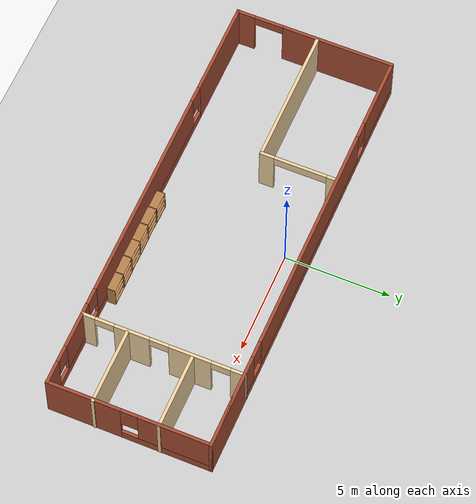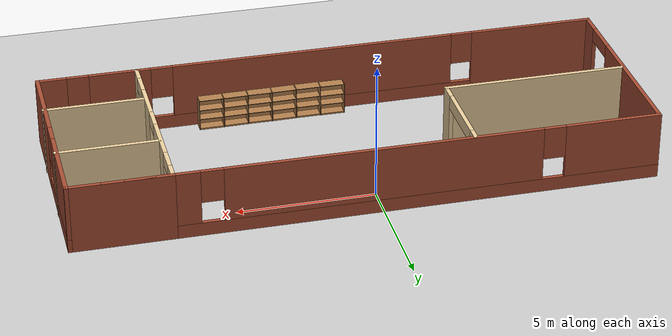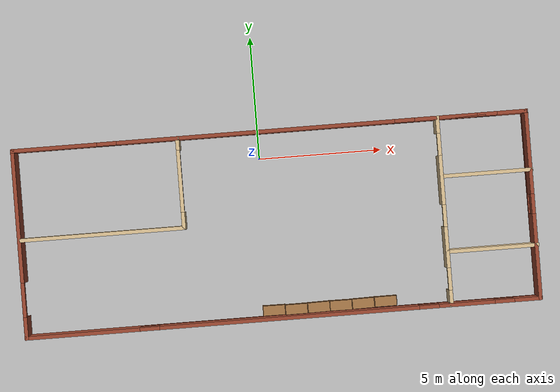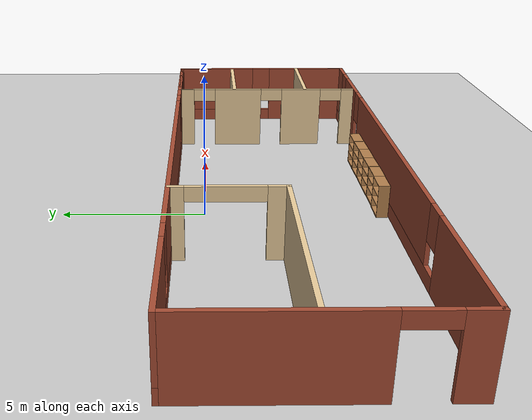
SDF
<sdf version="1.6">
 <world name="default">
  <light name="sun" type="directional">
   <pose>0 0 10 0 -0 0</pose>
   <diffuse>0.8 0.8 0.8 1</diffuse>
   <specular>0.2 0.2 0.2 1</specular>
   <attenuation>
    <range>1000</range>
    <constant>0.9</constant>
    <linear>0.01</linear>
    <quadratic>0.001</quadratic>
   </attenuation>
   <direction>-0.5 0.1 -0.9</direction>
  </light>
  <model name="ground_plane">
   <static>1</static>
   <link name="link">
    <collision name="collision">
     <geometry><plane><normal>0 0 1</normal><size>100 100</size></plane></geometry>
     <surface>
      <contact><collide_bitmask>65535</collide_bitmask></contact>
      <friction><ode><mu>100</mu><mu2>50</mu2></ode></friction>
     </surface>
    </collision>
    <visual name="visual">
     <cast_shadows>0</cast_shadows>
     <geometry><plane><normal>0 0 1</normal><size>100 100</size></plane></geometry>
     <material>
      <script><uri>file://media/materials/scripts/gazebo.material</uri><name>Gazebo/Grey</name></script>
     </material>
    </visual>
   </link>
  </model>
  <gravity>0 0 -9.8</gravity>
  <magnetic_field>6e-06 2.3e-05 -4.2e-05</magnetic_field>
  <atmosphere type="adiabatic"/>
  <physics name="default_physics" default="0" type="ode">
   <max_step_size>0.001</max_step_size>
   <real_time_factor>1</real_time_factor>
   <real_time_update_rate>1000</real_time_update_rate>
  </physics>
  <scene><ambient>0.4 0.4 0.4 1</ambient><background>0.7 0.7 0.7 1</background><shadows>1</shadows></scene>
  <spherical_coordinates>
   <surface_model>EARTH_WGS84</surface_model>
   <latitude_deg>0</latitude_deg>
   <longitude_deg>0</longitude_deg>
   <elevation>0</elevation>
   <heading_deg>0</heading_deg>
  </spherical_coordinates>
  <model name="Forum">
   <pose>0.501146 -2.70195 0 0 -0 0</pose>
   <link name="Wall_0">
    <collision name="Wall_0_Collision">
     <geometry><box><size>3.75 0.15 2.5</size></box></geometry>
     <pose>0 0 1.25 0 -0 0</pose>
    </collision>
    <visual name="Wall_0_Visual">
     <pose>0 0 1.25 0 -0 0</pose>
     <geometry><box><size>3.75 0.15 2.5</size></box></geometry>
     <material>
      <script><uri>file://media/materials/scripts/gazebo.material</uri><name>Gazebo/Bricks</name></script>
      <ambient>1 1 1 1</ambient>
     </material>
     <meta><layer>0</layer></meta>
    </visual>
    <pose>8.61 3.8 0 0 -0 0</pose>
   </link>
   <link name="Wall_1">
    <pose>-0.015 3.8 0 0 -0 3.14159</pose>
    <visual name="Wall_1_Visual_0">
     <pose>-9.8775 0 1.25 0 -0 0</pose>
     <geometry><box><size>1.245 0.15 2.5</size></box></geometry>
     <material>
      <script><uri>file://media/materials/scripts/gazebo.material</uri><name>Gazebo/Bricks</name></script>
      <ambient>1 1 1 1</ambient>
     </material>
     <meta><layer>0</layer></meta>
    </visual>
    <collision name="Wall_1_Collision_0">
     <geometry><box><size>1.245 0.15 2.5</size></box></geometry>
     <pose>-9.8775 0 1.25 0 -0 0</pose>
    </collision>
    <visual name="Wall_1_Visual_1">
     <pose>0.6225 0 0.25 0 -0 0</pose>
     <geometry><box><size>19.755 0.15 0.5</size></box></geometry>
     <material>
      <script><uri>file://media/materials/scripts/gazebo.material</uri><name>Gazebo/Bricks</name></script>
      <ambient>1 1 1 1</ambient>
     </material>
     <meta><layer>0</layer></meta>
    </visual>
    <collision name="Wall_1_Collision_1">
     <geometry><box><size>19.755 0.15 0.5</size></box></geometry>
     <pose>0.6225 0 0.25 0 -0 0</pose>
    </collision>
    <visual name="Wall_1_Visual_2">
     <pose>-7.18 0 1.5 0 -0 0</pose>
     <geometry><box><size>2.55 0.15 2</size></box></geometry>
     <material>
      <script><uri>file://media/materials/scripts/gazebo.material</uri><name>Gazebo/Bricks</name></script>
      <ambient>1 1 1 1</ambient>
     </material>
     <meta><layer>0</layer></meta>
    </visual>
    <collision name="Wall_1_Collision_2">
     <geometry><box><size>2.55 0.15 2</size></box></geometry>
     <pose>-7.18 0 1.5 0 -0 0</pose>
    </collision>
    <visual name="Wall_1_Visual_3">
     <pose>0.545 0 1.5 0 -0 0</pose>
     <geometry><box><size>11.3 0.15 2</size></box></geometry>
     <material>
      <script><uri>file://media/materials/scripts/gazebo.material</uri><name>Gazebo/Bricks</name></script>
      <ambient>1 1 1 1</ambient>
     </material>
     <meta><layer>0</layer></meta>
    </visual>
    <collision name="Wall_1_Collision_3">
     <geometry><box><size>11.3 0.15 2</size></box></geometry>
     <pose>0.545 0 1.5 0 -0 0</pose>
    </collision>
    <visual name="Wall_1_Visual_4">
     <pose>8.7475 0 1.5 0 -0 0</pose>
     <geometry><box><size>3.505 0.15 2</size></box></geometry>
     <material>
      <script><uri>file://media/materials/scripts/gazebo.material</uri><name>Gazebo/Bricks</name></script>
      <ambient>1 1 1 1</ambient>
     </material>
     <meta><layer>0</layer></meta>
    </visual>
    <collision name="Wall_1_Collision_4">
     <geometry><box><size>3.505 0.15 2</size></box></geometry>
     <pose>8.7475 0 1.5 0 -0 0</pose>
    </collision>
    <visual name="Wall_1_Visual_5">
     <pose>-8.855 0 1.9 0 -0 0</pose>
     <geometry><box><size>0.8 0.15 1.2</size></box></geometry>
     <material>
      <script><uri>file://media/materials/scripts/gazebo.material</uri><name>Gazebo/Bricks</name></script>
      <ambient>1 1 1 1</ambient>
     </material>
     <meta><layer>0</layer></meta>
    </visual>
    <collision name="Wall_1_Collision_5">
     <geometry><box><size>0.8 0.15 1.2</size></box></geometry>
     <pose>-8.855 0 1.9 0 -0 0</pose>
    </collision>
    <visual name="Wall_1_Visual_6">
     <pose>-5.505 0 1.9 0 -0 0</pose>
     <geometry><box><size>0.8 0.15 1.2</size></box></geometry>
     <material>
      <script><uri>file://media/materials/scripts/gazebo.material</uri><name>Gazebo/Bricks</name></script>
      <ambient>1 1 1 1</ambient>
     </material>
     <meta><layer>0</layer></meta>
    </visual>
    <collision name="Wall_1_Collision_6">
     <geometry><box><size>0.8 0.15 1.2</size></box></geometry>
     <pose>-5.505 0 1.9 0 -0 0</pose>
    </collision>
    <visual name="Wall_1_Visual_7">
     <pose>6.595 0 1.9 0 -0 0</pose>
     <geometry><box><size>0.8 0.15 1.2</size></box></geometry>
     <material>
      <script><uri>file://media/materials/scripts/gazebo.material</uri><name>Gazebo/Bricks</name></script>
      <ambient>1 1 1 1</ambient>
     </material>
     <meta><layer>0</layer></meta>
    </visual>
    <collision name="Wall_1_Collision_7">
     <geometry><box><size>0.8 0.15 1.2</size></box></geometry>
     <pose>6.595 0 1.9 0 -0 0</pose>
    </collision>
   </link>
   <link name="Wall_11">
    <collision name="Wall_11_Collision">
     <geometry><box><size>3.7 0.15 2.5</size></box></geometry>
     <pose>0 0 1.25 0 -0 0</pose>
    </collision>
    <visual name="Wall_11_Visual">
     <pose>0 0 1.25 0 -0 0</pose>
     <geometry><box><size>3.7 0.15 2.5</size></box></geometry>
     <material>
      <script><uri>file://media/materials/scripts/gazebo.material</uri><name>Gazebo/Grey</name></script>
      <ambient>0.921569 0.807843 0.615686 1</ambient>
     </material>
     <meta><layer>0</layer></meta>
    </visual>
    <pose>8.655 1.42 0 0 -0 0</pose>
   </link>
   <link name="Wall_13">
    <collision name="Wall_13_Collision">
     <geometry><box><size>3.7 0.15 2.5</size></box></geometry>
     <pose>0 0 1.25 0 -0 0</pose>
    </collision>
    <visual name="Wall_13_Visual">
     <pose>0 0 1.25 0 -0 0</pose>
     <geometry><box><size>3.7 0.15 2.5</size></box></geometry>
     <material>
      <script><uri>file://media/materials/scripts/gazebo.material</uri><name>Gazebo/Grey</name></script>
      <ambient>0.921569 0.807843 0.615686 1</ambient>
     </material>
     <meta><layer>0</layer></meta>
    </visual>
    <pose>8.665 -1.64 0 0 -0 0</pose>
   </link>
   <link name="Wall_2">
    <pose>-10.44 0 0 0 -0 -1.5708</pose>
    <visual name="Wall_2_Visual_0">
     <pose>-1.16 0 1.25 0 -0 0</pose>
     <geometry><box><size>5.43 0.15 2.5</size></box></geometry>
     <material>
      <script><uri>file://media/materials/scripts/gazebo.material</uri><name>Gazebo/Bricks</name></script>
      <ambient>1 1 1 1</ambient>
     </material>
     <meta><layer>0</layer></meta>
    </visual>
    <collision name="Wall_2_Collision_0">
     <geometry><box><size>5.43 0.15 2.5</size></box></geometry>
     <pose>-1.16 0 1.25 0 -0 0</pose>
    </collision>
    <visual name="Wall_2_Visual_1">
     <pose>3.41 0 1.25 0 -0 0</pose>
     <geometry><box><size>0.93 0.15 2.5</size></box></geometry>
     <material>
      <script><uri>file://media/materials/scripts/gazebo.material</uri><name>Gazebo/Bricks</name></script>
      <ambient>1 1 1 1</ambient>
     </material>
     <meta><layer>0</layer></meta>
    </visual>
    <collision name="Wall_2_Collision_1">
     <geometry><box><size>0.93 0.15 2.5</size></box></geometry>
     <pose>3.41 0 1.25 0 -0 0</pose>
    </collision>
    <visual name="Wall_2_Visual_2">
     <pose>2.25 0 2.25 0 -0 0</pose>
     <geometry><box><size>1.39 0.15 0.5</size></box></geometry>
     <material>
      <script><uri>file://media/materials/scripts/gazebo.material</uri><name>Gazebo/Bricks</name></script>
      <ambient>1 1 1 1</ambient>
     </material>
     <meta><layer>0</layer></meta>
    </visual>
    <collision name="Wall_2_Collision_2">
     <geometry><box><size>1.39 0.15 0.5</size></box></geometry>
     <pose>2.25 0 2.25 0 -0 0</pose>
    </collision>
   </link>
   <link name="Wall_3">
    <pose>-0.015 -3.8 0 0 -0 0</pose>
    <visual name="Wall_3_Visual_0">
     <pose>-8.1675 0 1.25 0 -0 0</pose>
     <geometry><box><size>4.665 0.15 2.5</size></box></geometry>
     <material>
      <script><uri>file://media/materials/scripts/gazebo.material</uri><name>Gazebo/Bricks</name></script>
      <ambient>1 1 1 1</ambient>
     </material>
     <meta><layer>0</layer></meta>
    </visual>
    <collision name="Wall_3_Collision_0">
     <geometry><box><size>4.665 0.15 2.5</size></box></geometry>
     <pose>-8.1675 0 1.25 0 -0 0</pose>
    </collision>
    <visual name="Wall_3_Visual_1">
     <pose>2.3325 0 0.25 0 -0 0</pose>
     <geometry><box><size>16.335 0.15 0.5</size></box></geometry>
     <material>
      <script><uri>file://media/materials/scripts/gazebo.material</uri><name>Gazebo/Bricks</name></script>
      <ambient>1 1 1 1</ambient>
     </material>
     <meta><layer>0</layer></meta>
    </visual>
    <collision name="Wall_3_Collision_1">
     <geometry><box><size>16.335 0.15 0.5</size></box></geometry>
     <pose>2.3325 0 0.25 0 -0 0</pose>
    </collision>
    <visual name="Wall_3_Visual_2">
     <pose>0.24 0 1.5 0 -0 0</pose>
     <geometry><box><size>10.55 0.15 2</size></box></geometry>
     <material>
      <script><uri>file://media/materials/scripts/gazebo.material</uri><name>Gazebo/Bricks</name></script>
      <ambient>1 1 1 1</ambient>
     </material>
     <meta><layer>0</layer></meta>
    </visual>
    <collision name="Wall_3_Collision_2">
     <geometry><box><size>10.55 0.15 2</size></box></geometry>
     <pose>0.24 0 1.5 0 -0 0</pose>
    </collision>
    <visual name="Wall_3_Visual_3">
     <pose>7.445 0 1.5 0 -0 0</pose>
     <geometry><box><size>2.26 0.15 2</size></box></geometry>
     <material>
      <script><uri>file://media/materials/scripts/gazebo.material</uri><name>Gazebo/Bricks</name></script>
      <ambient>1 1 1 1</ambient>
     </material>
     <meta><layer>0</layer></meta>
    </visual>
    <collision name="Wall_3_Collision_3">
     <geometry><box><size>2.26 0.15 2</size></box></geometry>
     <pose>7.445 0 1.5 0 -0 0</pose>
    </collision>
    <visual name="Wall_3_Visual_4">
     <pose>9.9375 0 1.5 0 -0 0</pose>
     <geometry><box><size>1.125 0.15 2</size></box></geometry>
     <material>
      <script><uri>file://media/materials/scripts/gazebo.material</uri><name>Gazebo/Bricks</name></script>
      <ambient>1 1 1 1</ambient>
     </material>
     <meta><layer>0</layer></meta>
    </visual>
    <collision name="Wall_3_Collision_4">
     <geometry><box><size>1.125 0.15 2</size></box></geometry>
     <pose>9.9375 0 1.5 0 -0 0</pose>
    </collision>
    <visual name="Wall_3_Visual_5">
     <pose>-5.435 0 1.9 0 -0 0</pose>
     <geometry><box><size>0.8 0.15 1.2</size></box></geometry>
     <material>
      <script><uri>file://media/materials/scripts/gazebo.material</uri><name>Gazebo/Bricks</name></script>
      <ambient>1 1 1 1</ambient>
     </material>
     <meta><layer>0</layer></meta>
    </visual>
    <collision name="Wall_3_Collision_5">
     <geometry><box><size>0.8 0.15 1.2</size></box></geometry>
     <pose>-5.435 0 1.9 0 -0 0</pose>
    </collision>
    <visual name="Wall_3_Visual_6">
     <pose>5.915 0 1.9 0 -0 0</pose>
     <geometry><box><size>0.8 0.15 1.2</size></box></geometry>
     <material>
      <script><uri>file://media/materials/scripts/gazebo.material</uri><name>Gazebo/Bricks</name></script>
      <ambient>1 1 1 1</ambient>
     </material>
     <meta><layer>0</layer></meta>
    </visual>
    <collision name="Wall_3_Collision_6">
     <geometry><box><size>0.8 0.15 1.2</size></box></geometry>
     <pose>5.915 0 1.9 0 -0 0</pose>
    </collision>
    <visual name="Wall_3_Visual_7">
     <pose>8.975 0 1.9 0 -0 0</pose>
     <geometry><box><size>0.8 0.15 1.2</size></box></geometry>
     <material>
      <script><uri>file://media/materials/scripts/gazebo.material</uri><name>Gazebo/Bricks</name></script>
      <ambient>1 1 1 1</ambient>
     </material>
     <meta><layer>0</layer></meta>
    </visual>
    <collision name="Wall_3_Collision_7">
     <geometry><box><size>0.8 0.15 1.2</size></box></geometry>
     <pose>8.975 0 1.9 0 -0 0</pose>
    </collision>
   </link>
   <link name="Wall_4">
    <pose>10.41 0 0 0 -0 1.5708</pose>
    <visual name="Wall_4_Visual_0">
     <pose>-2.1225 0 1.25 0 -0 0</pose>
     <geometry><box><size>3.505 0.15 2.5</size></box></geometry>
     <material>
      <script><uri>file://media/materials/scripts/gazebo.material</uri><name>Gazebo/Bricks</name></script>
      <ambient>1 1 1 1</ambient>
     </material>
     <meta><layer>0</layer></meta>
    </visual>
    <collision name="Wall_4_Collision_0">
     <geometry><box><size>3.505 0.15 2.5</size></box></geometry>
     <pose>-2.1225 0 1.25 0 -0 0</pose>
    </collision>
    <visual name="Wall_4_Visual_1">
     <pose>1.7525 0 0.25 0 -0 0</pose>
     <geometry><box><size>4.245 0.15 0.5</size></box></geometry>
     <material>
      <script><uri>file://media/materials/scripts/gazebo.material</uri><name>Gazebo/Bricks</name></script>
      <ambient>1 1 1 1</ambient>
     </material>
     <meta><layer>0</layer></meta>
    </visual>
    <collision name="Wall_4_Collision_1">
     <geometry><box><size>4.245 0.15 0.5</size></box></geometry>
     <pose>1.7525 0 0.25 0 -0 0</pose>
    </collision>
    <visual name="Wall_4_Visual_2">
     <pose>2.1525 0 1.5 0 -0 0</pose>
     <geometry><box><size>3.445 0.15 2</size></box></geometry>
     <material>
      <script><uri>file://media/materials/scripts/gazebo.material</uri><name>Gazebo/Bricks</name></script>
      <ambient>1 1 1 1</ambient>
     </material>
     <meta><layer>0</layer></meta>
    </visual>
    <collision name="Wall_4_Collision_2">
     <geometry><box><size>3.445 0.15 2</size></box></geometry>
     <pose>2.1525 0 1.5 0 -0 0</pose>
    </collision>
    <visual name="Wall_4_Visual_3">
     <pose>0.03 0 1.9 0 -0 0</pose>
     <geometry><box><size>0.8 0.15 1.2</size></box></geometry>
     <material>
      <script><uri>file://media/materials/scripts/gazebo.material</uri><name>Gazebo/Bricks</name></script>
      <ambient>1 1 1 1</ambient>
     </material>
     <meta><layer>0</layer></meta>
    </visual>
    <collision name="Wall_4_Collision_3">
     <geometry><box><size>0.8 0.15 1.2</size></box></geometry>
     <pose>0.03 0 1.9 0 -0 0</pose>
    </collision>
   </link>
   <link name="Wall_6">
    <collision name="Wall_6_Collision">
     <geometry><box><size>6.75 0.15 2.5</size></box></geometry>
     <pose>0 0 1.25 0 -0 0</pose>
    </collision>
    <visual name="Wall_6_Visual">
     <pose>0 0 1.25 0 -0 0</pose>
     <geometry><box><size>6.75 0.15 2.5</size></box></geometry>
     <material>
      <script><uri>file://media/materials/scripts/gazebo.material</uri><name>Gazebo/Grey</name></script>
      <ambient>0.921569 0.807843 0.615686 1</ambient>
     </material>
     <meta><layer>0</layer></meta>
    </visual>
    <pose>-7.05 0.16 0 0 -0 0</pose>
   </link>
   <link name="Wall_7">
    <pose>-3.75 1.96 0 0 -0 1.5708</pose>
    <visual name="Wall_7_Visual_0">
     <pose>-1.52 0 1.25 0 -0 0</pose>
     <geometry><box><size>0.71 0.15 2.5</size></box></geometry>
     <material>
      <script><uri>file://media/materials/scripts/gazebo.material</uri><name>Gazebo/Grey</name></script>
      <ambient>0.921569 0.807843 0.615686 1</ambient>
     </material>
     <meta><layer>0</layer></meta>
    </visual>
    <collision name="Wall_7_Collision_0">
     <geometry><box><size>0.71 0.15 2.5</size></box></geometry>
     <pose>-1.52 0 1.25 0 -0 0</pose>
    </collision>
    <visual name="Wall_7_Visual_1">
     <pose>1.615 0 1.25 0 -0 0</pose>
     <geometry><box><size>0.52 0.15 2.5</size></box></geometry>
     <material>
      <script><uri>file://media/materials/scripts/gazebo.material</uri><name>Gazebo/Grey</name></script>
      <ambient>0.921569 0.807843 0.615686 1</ambient>
     </material>
     <meta><layer>0</layer></meta>
    </visual>
    <collision name="Wall_7_Collision_1">
     <geometry><box><size>0.52 0.15 2.5</size></box></geometry>
     <pose>1.615 0 1.25 0 -0 0</pose>
    </collision>
    <visual name="Wall_7_Visual_2">
     <pose>0.095 0 2.25 0 -0 0</pose>
     <geometry><box><size>2.52 0.15 0.5</size></box></geometry>
     <material>
      <script><uri>file://media/materials/scripts/gazebo.material</uri><name>Gazebo/Grey</name></script>
      <ambient>0.921569 0.807843 0.615686 1</ambient>
     </material>
     <meta><layer>0</layer></meta>
    </visual>
    <collision name="Wall_7_Collision_2">
     <geometry><box><size>2.52 0.15 0.5</size></box></geometry>
     <pose>0.095 0 2.25 0 -0 0</pose>
    </collision>
   </link>
   <link name="Wall_9">
    <pose>6.81 0 0 0 -0 -1.5708</pose>
    <visual name="Wall_9_Visual_0">
     <pose>-3.5225 0 1.25 0 -0 0</pose>
     <geometry><box><size>0.705 0.15 2.5</size></box></geometry>
     <material>
      <script><uri>file://media/materials/scripts/gazebo.material</uri><name>Gazebo/Grey</name></script>
      <ambient>0.921569 0.807843 0.615686 1</ambient>
     </material>
     <meta><layer>0</layer></meta>
    </visual>
    <collision name="Wall_9_Collision_0">
     <geometry><box><size>0.705 0.15 2.5</size></box></geometry>
     <pose>-3.5225 0 1.25 0 -0 0</pose>
    </collision>
    <visual name="Wall_9_Visual_1">
     <pose>-1.275 0 1.25 0 -0 0</pose>
     <geometry><box><size>1.99 0.15 2.5</size></box></geometry>
     <material>
      <script><uri>file://media/materials/scripts/gazebo.material</uri><name>Gazebo/Grey</name></script>
      <ambient>0.921569 0.807843 0.615686 1</ambient>
     </material>
     <meta><layer>0</layer></meta>
    </visual>
    <collision name="Wall_9_Collision_1">
     <geometry><box><size>1.99 0.15 2.5</size></box></geometry>
     <pose>-1.275 0 1.25 0 -0 0</pose>
    </collision>
    <visual name="Wall_9_Visual_2">
     <pose>1.455 0 1.25 0 -0 0</pose>
     <geometry><box><size>1.67 0.15 2.5</size></box></geometry>
     <material>
      <script><uri>file://media/materials/scripts/gazebo.material</uri><name>Gazebo/Grey</name></script>
      <ambient>0.921569 0.807843 0.615686 1</ambient>
     </material>
     <meta><layer>0</layer></meta>
    </visual>
    <collision name="Wall_9_Collision_2">
     <geometry><box><size>1.67 0.15 2.5</size></box></geometry>
     <pose>1.455 0 1.25 0 -0 0</pose>
    </collision>
    <visual name="Wall_9_Visual_3">
     <pose>3.5325 0 1.25 0 -0 0</pose>
     <geometry><box><size>0.685 0.15 2.5</size></box></geometry>
     <material>
      <script><uri>file://media/materials/scripts/gazebo.material</uri><name>Gazebo/Grey</name></script>
      <ambient>0.921569 0.807843 0.615686 1</ambient>
     </material>
     <meta><layer>0</layer></meta>
    </visual>
    <collision name="Wall_9_Collision_3">
     <geometry><box><size>0.685 0.15 2.5</size></box></geometry>
     <pose>3.5325 0 1.25 0 -0 0</pose>
    </collision>
    <visual name="Wall_9_Visual_4">
     <pose>-2.72 0 2.25 0 -0 0</pose>
     <geometry><box><size>0.9 0.15 0.5</size></box></geometry>
     <material>
      <script><uri>file://media/materials/scripts/gazebo.material</uri><name>Gazebo/Grey</name></script>
      <ambient>0.921569 0.807843 0.615686 1</ambient>
     </material>
     <meta><layer>0</layer></meta>
    </visual>
    <collision name="Wall_9_Collision_4">
     <geometry><box><size>0.9 0.15 0.5</size></box></geometry>
     <pose>-2.72 0 2.25 0 -0 0</pose>
    </collision>
    <visual name="Wall_9_Visual_5">
     <pose>0.17 0 2.25 0 -0 0</pose>
     <geometry><box><size>0.9 0.15 0.5</size></box></geometry>
     <material>
      <script><uri>file://media/materials/scripts/gazebo.material</uri><name>Gazebo/Grey</name></script>
      <ambient>0.921569 0.807843 0.615686 1</ambient>
     </material>
     <meta><layer>0</layer></meta>
    </visual>
    <collision name="Wall_9_Collision_5">
     <geometry><box><size>0.9 0.15 0.5</size></box></geometry>
     <pose>0.17 0 2.25 0 -0 0</pose>
    </collision>
    <visual name="Wall_9_Visual_6">
     <pose>2.74 0 2.25 0 -0 0</pose>
     <geometry><box><size>0.9 0.15 0.5</size></box></geometry>
     <material>
      <script><uri>file://media/materials/scripts/gazebo.material</uri><name>Gazebo/Grey</name></script>
      <ambient>0.921569 0.807843 0.615686 1</ambient>
     </material>
     <meta><layer>0</layer></meta>
    </visual>
    <collision name="Wall_9_Collision_6">
     <geometry><box><size>0.9 0.15 0.5</size></box></geometry>
     <pose>2.74 0 2.25 0 -0 0</pose>
    </collision>
   </link>
   <static>1</static>
  </model>
  <model name="bookshelf">
   <static>1</static>
   <link name="link">
    <inertial><mass>1</mass></inertial>
    <collision name="back">
     <pose>0 0.005 0.6 0 -0 0</pose>
     <geometry><box><size>0.9 0.01 1.2</size></box></geometry>
    </collision>
    <visual name="visual1">
     <pose>0 0.005 0.6 0 -0 0</pose>
     <geometry><box><size>0.9 0.01 1.2</size></box></geometry>
     <material>
      <script><uri>file://media/materials/scripts/gazebo.material</uri><name>Gazebo/Wood</name></script>
     </material>
    </visual>
    <collision name="left_side">
     <pose>0.45 -0.195 0.6 0 -0 0</pose>
     <geometry><box><size>0.02 0.4 1.2</size></box></geometry>
    </collision>
    <visual name="visual2">
     <pose>0.45 -0.195 0.6 0 -0 0</pose>
     <geometry><box><size>0.02 0.4 1.2</size></box></geometry>
     <material>
      <script><uri>file://media/materials/scripts/gazebo.material</uri><name>Gazebo/Wood</name></script>
     </material>
    </visual>
    <collision name="right_side">
     <pose>-0.45 -0.195 0.6 0 -0 0</pose>
     <geometry><box><size>0.02 0.4 1.2</size></box></geometry>
    </collision>
    <visual name="visual3">
     <pose>-0.45 -0.195 0.6 0 -0 0</pose>
     <geometry><box><size>0.02 0.4 1.2</size></box></geometry>
     <material>
      <script><uri>file://media/materials/scripts/gazebo.material</uri><name>Gazebo/Wood</name></script>
     </material>
    </visual>
    <collision name="bottom">
     <pose>0 -0.195 0.03 0 -0 0</pose>
     <geometry><box><size>0.88 0.4 0.06</size></box></geometry>
    </collision>
    <visual name="visual4">
     <pose>0 -0.195 0.03 0 -0 0</pose>
     <geometry><box><size>0.88 0.4 0.06</size></box></geometry>
     <material>
      <script><uri>file://media/materials/scripts/gazebo.material</uri><name>Gazebo/Wood</name></script>
     </material>
    </visual>
    <collision name="top">
     <pose>0 -0.195 1.19 0 -0 0</pose>
     <geometry><box><size>0.88 0.4 0.02</size></box></geometry>
    </collision>
    <visual name="visual5">
     <pose>0 -0.195 1.19 0 -0 0</pose>
     <geometry><box><size>0.88 0.4 0.02</size></box></geometry>
     <material>
      <script><uri>file://media/materials/scripts/gazebo.material</uri><name>Gazebo/Wood</name></script>
     </material>
    </visual>
    <collision name="low_shelf">
     <pose>0 -0.195 0.43 0 -0 0</pose>
     <geometry><box><size>0.88 0.4 0.02</size></box></geometry>
    </collision>
    <visual name="visual6">
     <pose>0 -0.195 0.43 0 -0 0</pose>
     <geometry><box><size>0.88 0.4 0.02</size></box></geometry>
     <material>
      <script><uri>file://media/materials/scripts/gazebo.material</uri><name>Gazebo/Wood</name></script>
     </material>
    </visual>
    <collision name="high_shelf">
     <pose>0 -0.195 0.8 0 -0 0</pose>
     <geometry><box><size>0.88 0.4 0.02</size></box></geometry>
    </collision>
    <visual name="visual7">
     <pose>0 -0.195 0.8 0 -0 0</pose>
     <geometry><box><size>0.88 0.4 0.02</size></box></geometry>
     <material>
      <script><uri>file://media/materials/scripts/gazebo.material</uri><name>Gazebo/Wood</name></script>
     </material>
    </visual>
   </link>
   <pose>4.68778 -6.37323 0 0 0 -3.14061</pose>
  </model>
  <model name="bookshelf_0">
   <static>1</static>
   <link name="link">
    <inertial><mass>1</mass></inertial>
    <collision name="back">
     <pose>0 0.005 0.6 0 -0 0</pose>
     <geometry><box><size>0.9 0.01 1.2</size></box></geometry>
    </collision>
    <visual name="visual1">
     <pose>0 0.005 0.6 0 -0 0</pose>
     <geometry><box><size>0.9 0.01 1.2</size></box></geometry>
     <material>
      <script><uri>file://media/materials/scripts/gazebo.material</uri><name>Gazebo/Wood</name></script>
     </material>
    </visual>
    <collision name="left_side">
     <pose>0.45 -0.195 0.6 0 -0 0</pose>
     <geometry><box><size>0.02 0.4 1.2</size></box></geometry>
    </collision>
    <visual name="visual2">
     <pose>0.45 -0.195 0.6 0 -0 0</pose>
     <geometry><box><size>0.02 0.4 1.2</size></box></geometry>
     <material>
      <script><uri>file://media/materials/scripts/gazebo.material</uri><name>Gazebo/Wood</name></script>
     </material>
    </visual>
    <collision name="right_side">
     <pose>-0.45 -0.195 0.6 0 -0 0</pose>
     <geometry><box><size>0.02 0.4 1.2</size></box></geometry>
    </collision>
    <visual name="visual3">
     <pose>-0.45 -0.195 0.6 0 -0 0</pose>
     <geometry><box><size>0.02 0.4 1.2</size></box></geometry>
     <material>
      <script><uri>file://media/materials/scripts/gazebo.material</uri><name>Gazebo/Wood</name></script>
     </material>
    </visual>
    <collision name="bottom">
     <pose>0 -0.195 0.03 0 -0 0</pose>
     <geometry><box><size>0.88 0.4 0.06</size></box></geometry>
    </collision>
    <visual name="visual4">
     <pose>0 -0.195 0.03 0 -0 0</pose>
     <geometry><box><size>0.88 0.4 0.06</size></box></geometry>
     <material>
      <script><uri>file://media/materials/scripts/gazebo.material</uri><name>Gazebo/Wood</name></script>
     </material>
    </visual>
    <collision name="top">
     <pose>0 -0.195 1.19 0 -0 0</pose>
     <geometry><box><size>0.88 0.4 0.02</size></box></geometry>
    </collision>
    <visual name="visual5">
     <pose>0 -0.195 1.19 0 -0 0</pose>
     <geometry><box><size>0.88 0.4 0.02</size></box></geometry>
     <material>
      <script><uri>file://media/materials/scripts/gazebo.material</uri><name>Gazebo/Wood</name></script>
     </material>
    </visual>
    <collision name="low_shelf">
     <pose>0 -0.195 0.43 0 -0 0</pose>
     <geometry><box><size>0.88 0.4 0.02</size></box></geometry>
    </collision>
    <visual name="visual6">
     <pose>0 -0.195 0.43 0 -0 0</pose>
     <geometry><box><size>0.88 0.4 0.02</size></box></geometry>
     <material>
      <script><uri>file://media/materials/scripts/gazebo.material</uri><name>Gazebo/Wood</name></script>
     </material>
    </visual>
    <collision name="high_shelf">
     <pose>0 -0.195 0.8 0 -0 0</pose>
     <geometry><box><size>0.88 0.4 0.02</size></box></geometry>
    </collision>
    <visual name="visual7">
     <pose>0 -0.195 0.8 0 -0 0</pose>
     <geometry><box><size>0.88 0.4 0.02</size></box></geometry>
     <material>
      <script><uri>file://media/materials/scripts/gazebo.material</uri><name>Gazebo/Wood</name></script>
     </material>
    </visual>
   </link>
   <pose>3.77252 -6.38371 0 0 -0 -3.12788</pose>
  </model>
  <model name="bookshelf_1">
   <static>1</static>
   <link name="link">
    <inertial><mass>1</mass></inertial>
    <collision name="back">
     <pose>0 0.005 0.6 0 -0 0</pose>
     <geometry><box><size>0.9 0.01 1.2</size></box></geometry>
    </collision>
    <visual name="visual1">
     <pose>0 0.005 0.6 0 -0 0</pose>
     <geometry><box><size>0.9 0.01 1.2</size></box></geometry>
     <material>
      <script><uri>file://media/materials/scripts/gazebo.material</uri><name>Gazebo/Wood</name></script>
     </material>
    </visual>
    <collision name="left_side">
     <pose>0.45 -0.195 0.6 0 -0 0</pose>
     <geometry><box><size>0.02 0.4 1.2</size></box></geometry>
    </collision>
    <visual name="visual2">
     <pose>0.45 -0.195 0.6 0 -0 0</pose>
     <geometry><box><size>0.02 0.4 1.2</size></box></geometry>
     <material>
      <script><uri>file://media/materials/scripts/gazebo.material</uri><name>Gazebo/Wood</name></script>
     </material>
    </visual>
    <collision name="right_side">
     <pose>-0.45 -0.195 0.6 0 -0 0</pose>
     <geometry><box><size>0.02 0.4 1.2</size></box></geometry>
    </collision>
    <visual name="visual3">
     <pose>-0.45 -0.195 0.6 0 -0 0</pose>
     <geometry><box><size>0.02 0.4 1.2</size></box></geometry>
     <material>
      <script><uri>file://media/materials/scripts/gazebo.material</uri><name>Gazebo/Wood</name></script>
     </material>
    </visual>
    <collision name="bottom">
     <pose>0 -0.195 0.03 0 -0 0</pose>
     <geometry><box><size>0.88 0.4 0.06</size></box></geometry>
    </collision>
    <visual name="visual4">
     <pose>0 -0.195 0.03 0 -0 0</pose>
     <geometry><box><size>0.88 0.4 0.06</size></box></geometry>
     <material>
      <script><uri>file://media/materials/scripts/gazebo.material</uri><name>Gazebo/Wood</name></script>
     </material>
    </visual>
    <collision name="top">
     <pose>0 -0.195 1.19 0 -0 0</pose>
     <geometry><box><size>0.88 0.4 0.02</size></box></geometry>
    </collision>
    <visual name="visual5">
     <pose>0 -0.195 1.19 0 -0 0</pose>
     <geometry><box><size>0.88 0.4 0.02</size></box></geometry>
     <material>
      <script><uri>file://media/materials/scripts/gazebo.material</uri><name>Gazebo/Wood</name></script>
     </material>
    </visual>
    <collision name="low_shelf">
     <pose>0 -0.195 0.43 0 -0 0</pose>
     <geometry><box><size>0.88 0.4 0.02</size></box></geometry>
    </collision>
    <visual name="visual6">
     <pose>0 -0.195 0.43 0 -0 0</pose>
     <geometry><box><size>0.88 0.4 0.02</size></box></geometry>
     <material>
      <script><uri>file://media/materials/scripts/gazebo.material</uri><name>Gazebo/Wood</name></script>
     </material>
    </visual>
    <collision name="high_shelf">
     <pose>0 -0.195 0.8 0 -0 0</pose>
     <geometry><box><size>0.88 0.4 0.02</size></box></geometry>
    </collision>
    <visual name="visual7">
     <pose>0 -0.195 0.8 0 -0 0</pose>
     <geometry><box><size>0.88 0.4 0.02</size></box></geometry>
     <material>
      <script><uri>file://media/materials/scripts/gazebo.material</uri><name>Gazebo/Wood</name></script>
     </material>
    </visual>
   </link>
   <pose>2.85484 -6.39425 0 0 -0 3.13413</pose>
  </model>
  <model name="bookshelf_2">
   <static>1</static>
   <link name="link">
    <inertial><mass>1</mass></inertial>
    <collision name="back">
     <pose>0 0.005 0.6 0 -0 0</pose>
     <geometry><box><size>0.9 0.01 1.2</size></box></geometry>
    </collision>
    <visual name="visual1">
     <pose>0 0.005 0.6 0 -0 0</pose>
     <geometry><box><size>0.9 0.01 1.2</size></box></geometry>
     <material>
      <script><uri>file://media/materials/scripts/gazebo.material</uri><name>Gazebo/Wood</name></script>
     </material>
    </visual>
    <collision name="left_side">
     <pose>0.45 -0.195 0.6 0 -0 0</pose>
     <geometry><box><size>0.02 0.4 1.2</size></box></geometry>
    </collision>
    <visual name="visual2">
     <pose>0.45 -0.195 0.6 0 -0 0</pose>
     <geometry><box><size>0.02 0.4 1.2</size></box></geometry>
     <material>
      <script><uri>file://media/materials/scripts/gazebo.material</uri><name>Gazebo/Wood</name></script>
     </material>
    </visual>
    <collision name="right_side">
     <pose>-0.45 -0.195 0.6 0 -0 0</pose>
     <geometry><box><size>0.02 0.4 1.2</size></box></geometry>
    </collision>
    <visual name="visual3">
     <pose>-0.45 -0.195 0.6 0 -0 0</pose>
     <geometry><box><size>0.02 0.4 1.2</size></box></geometry>
     <material>
      <script><uri>file://media/materials/scripts/gazebo.material</uri><name>Gazebo/Wood</name></script>
     </material>
    </visual>
    <collision name="bottom">
     <pose>0 -0.195 0.03 0 -0 0</pose>
     <geometry><box><size>0.88 0.4 0.06</size></box></geometry>
    </collision>
    <visual name="visual4">
     <pose>0 -0.195 0.03 0 -0 0</pose>
     <geometry><box><size>0.88 0.4 0.06</size></box></geometry>
     <material>
      <script><uri>file://media/materials/scripts/gazebo.material</uri><name>Gazebo/Wood</name></script>
     </material>
    </visual>
    <collision name="top">
     <pose>0 -0.195 1.19 0 -0 0</pose>
     <geometry><box><size>0.88 0.4 0.02</size></box></geometry>
    </collision>
    <visual name="visual5">
     <pose>0 -0.195 1.19 0 -0 0</pose>
     <geometry><box><size>0.88 0.4 0.02</size></box></geometry>
     <material>
      <script><uri>file://media/materials/scripts/gazebo.material</uri><name>Gazebo/Wood</name></script>
     </material>
    </visual>
    <collision name="low_shelf">
     <pose>0 -0.195 0.43 0 -0 0</pose>
     <geometry><box><size>0.88 0.4 0.02</size></box></geometry>
    </collision>
    <visual name="visual6">
     <pose>0 -0.195 0.43 0 -0 0</pose>
     <geometry><box><size>0.88 0.4 0.02</size></box></geometry>
     <material>
      <script><uri>file://media/materials/scripts/gazebo.material</uri><name>Gazebo/Wood</name></script>
     </material>
    </visual>
    <collision name="high_shelf">
     <pose>0 -0.195 0.8 0 -0 0</pose>
     <geometry><box><size>0.88 0.4 0.02</size></box></geometry>
    </collision>
    <visual name="visual7">
     <pose>0 -0.195 0.8 0 -0 0</pose>
     <geometry><box><size>0.88 0.4 0.02</size></box></geometry>
     <material>
      <script><uri>file://media/materials/scripts/gazebo.material</uri><name>Gazebo/Wood</name></script>
     </material>
    </visual>
   </link>
   <pose>1.95722 -6.39649 0 0 -0 -3.1276</pose>
  </model>
  <model name="bookshelf_3">
   <static>1</static>
   <link name="link">
    <inertial><mass>1</mass></inertial>
    <collision name="back">
     <pose>0 0.005 0.6 0 -0 0</pose>
     <geometry><box><size>0.9 0.01 1.2</size></box></geometry>
    </collision>
    <visual name="visual1">
     <pose>0 0.005 0.6 0 -0 0</pose>
     <geometry><box><size>0.9 0.01 1.2</size></box></geometry>
     <material>
      <script><uri>file://media/materials/scripts/gazebo.material</uri><name>Gazebo/Wood</name></script>
     </material>
    </visual>
    <collision name="left_side">
     <pose>0.45 -0.195 0.6 0 -0 0</pose>
     <geometry><box><size>0.02 0.4 1.2</size></box></geometry>
    </collision>
    <visual name="visual2">
     <pose>0.45 -0.195 0.6 0 -0 0</pose>
     <geometry><box><size>0.02 0.4 1.2</size></box></geometry>
     <material>
      <script><uri>file://media/materials/scripts/gazebo.material</uri><name>Gazebo/Wood</name></script>
     </material>
    </visual>
    <collision name="right_side">
     <pose>-0.45 -0.195 0.6 0 -0 0</pose>
     <geometry><box><size>0.02 0.4 1.2</size></box></geometry>
    </collision>
    <visual name="visual3">
     <pose>-0.45 -0.195 0.6 0 -0 0</pose>
     <geometry><box><size>0.02 0.4 1.2</size></box></geometry>
     <material>
      <script><uri>file://media/materials/scripts/gazebo.material</uri><name>Gazebo/Wood</name></script>
     </material>
    </visual>
    <collision name="bottom">
     <pose>0 -0.195 0.03 0 -0 0</pose>
     <geometry><box><size>0.88 0.4 0.06</size></box></geometry>
    </collision>
    <visual name="visual4">
     <pose>0 -0.195 0.03 0 -0 0</pose>
     <geometry><box><size>0.88 0.4 0.06</size></box></geometry>
     <material>
      <script><uri>file://media/materials/scripts/gazebo.material</uri><name>Gazebo/Wood</name></script>
     </material>
    </visual>
    <collision name="top">
     <pose>0 -0.195 1.19 0 -0 0</pose>
     <geometry><box><size>0.88 0.4 0.02</size></box></geometry>
    </collision>
    <visual name="visual5">
     <pose>0 -0.195 1.19 0 -0 0</pose>
     <geometry><box><size>0.88 0.4 0.02</size></box></geometry>
     <material>
      <script><uri>file://media/materials/scripts/gazebo.material</uri><name>Gazebo/Wood</name></script>
     </material>
    </visual>
    <collision name="low_shelf">
     <pose>0 -0.195 0.43 0 -0 0</pose>
     <geometry><box><size>0.88 0.4 0.02</size></box></geometry>
    </collision>
    <visual name="visual6">
     <pose>0 -0.195 0.43 0 -0 0</pose>
     <geometry><box><size>0.88 0.4 0.02</size></box></geometry>
     <material>
      <script><uri>file://media/materials/scripts/gazebo.material</uri><name>Gazebo/Wood</name></script>
     </material>
    </visual>
    <collision name="high_shelf">
     <pose>0 -0.195 0.8 0 -0 0</pose>
     <geometry><box><size>0.88 0.4 0.02</size></box></geometry>
    </collision>
    <visual name="visual7">
     <pose>0 -0.195 0.8 0 -0 0</pose>
     <geometry><box><size>0.88 0.4 0.02</size></box></geometry>
     <material>
      <script><uri>file://media/materials/scripts/gazebo.material</uri><name>Gazebo/Wood</name></script>
     </material>
    </visual>
   </link>
   <pose>1.0372 -6.40766 0 0 0 -3.14033</pose>
  </model>
  <model name="bookshelf_4">
   <static>1</static>
   <link name="link">
    <inertial><mass>1</mass></inertial>
    <collision name="back">
     <pose>0 0.005 0.6 0 -0 0</pose>
     <geometry><box><size>0.9 0.01 1.2</size></box></geometry>
    </collision>
    <visual name="visual1">
     <pose>0 0.005 0.6 0 -0 0</pose>
     <geometry><box><size>0.9 0.01 1.2</size></box></geometry>
     <material>
      <script><uri>file://media/materials/scripts/gazebo.material</uri><name>Gazebo/Wood</name></script>
     </material>
    </visual>
    <collision name="left_side">
     <pose>0.45 -0.195 0.6 0 -0 0</pose>
     <geometry><box><size>0.02 0.4 1.2</size></box></geometry>
    </collision>
    <visual name="visual2">
     <pose>0.45 -0.195 0.6 0 -0 0</pose>
     <geometry><box><size>0.02 0.4 1.2</size></box></geometry>
     <material>
      <script><uri>file://media/materials/scripts/gazebo.material</uri><name>Gazebo/Wood</name></script>
     </material>
    </visual>
    <collision name="right_side">
     <pose>-0.45 -0.195 0.6 0 -0 0</pose>
     <geometry><box><size>0.02 0.4 1.2</size></box></geometry>
    </collision>
    <visual name="visual3">
     <pose>-0.45 -0.195 0.6 0 -0 0</pose>
     <geometry><box><size>0.02 0.4 1.2</size></box></geometry>
     <material>
      <script><uri>file://media/materials/scripts/gazebo.material</uri><name>Gazebo/Wood</name></script>
     </material>
    </visual>
    <collision name="bottom">
     <pose>0 -0.195 0.03 0 -0 0</pose>
     <geometry><box><size>0.88 0.4 0.06</size></box></geometry>
    </collision>
    <visual name="visual4">
     <pose>0 -0.195 0.03 0 -0 0</pose>
     <geometry><box><size>0.88 0.4 0.06</size></box></geometry>
     <material>
      <script><uri>file://media/materials/scripts/gazebo.material</uri><name>Gazebo/Wood</name></script>
     </material>
    </visual>
    <collision name="top">
     <pose>0 -0.195 1.19 0 -0 0</pose>
     <geometry><box><size>0.88 0.4 0.02</size></box></geometry>
    </collision>
    <visual name="visual5">
     <pose>0 -0.195 1.19 0 -0 0</pose>
     <geometry><box><size>0.88 0.4 0.02</size></box></geometry>
     <material>
      <script><uri>file://media/materials/scripts/gazebo.material</uri><name>Gazebo/Wood</name></script>
     </material>
    </visual>
    <collision name="low_shelf">
     <pose>0 -0.195 0.43 0 -0 0</pose>
     <geometry><box><size>0.88 0.4 0.02</size></box></geometry>
    </collision>
    <visual name="visual6">
     <pose>0 -0.195 0.43 0 -0 0</pose>
     <geometry><box><size>0.88 0.4 0.02</size></box></geometry>
     <material>
      <script><uri>file://media/materials/scripts/gazebo.material</uri><name>Gazebo/Wood</name></script>
     </material>
    </visual>
    <collision name="high_shelf">
     <pose>0 -0.195 0.8 0 -0 0</pose>
     <geometry><box><size>0.88 0.4 0.02</size></box></geometry>
    </collision>
    <visual name="visual7">
     <pose>0 -0.195 0.8 0 -0 0</pose>
     <geometry><box><size>0.88 0.4 0.02</size></box></geometry>
     <material>
      <script><uri>file://media/materials/scripts/gazebo.material</uri><name>Gazebo/Wood</name></script>
     </material>
    </visual>
   </link>
   <pose>0.122217 -6.38797 0 0 -0 3.13211</pose>
  </model>
 </world>
</sdf>
